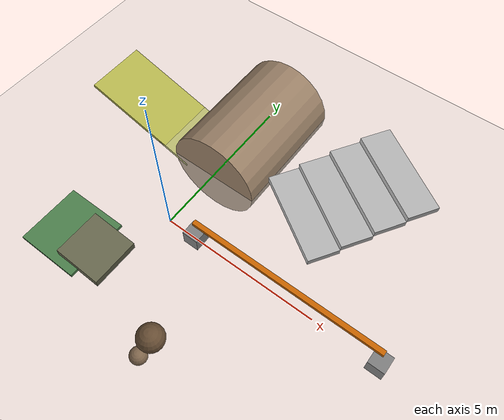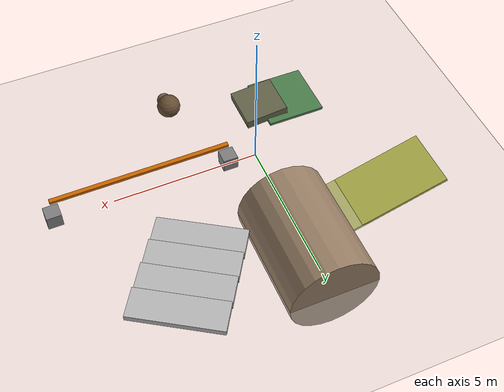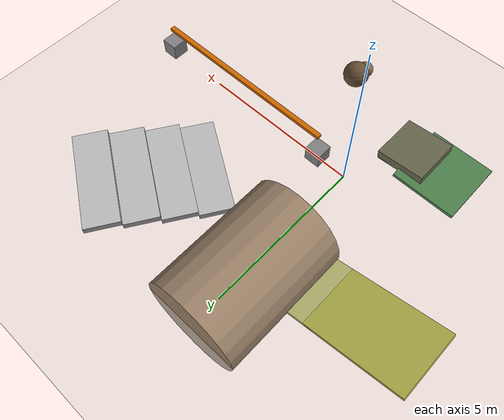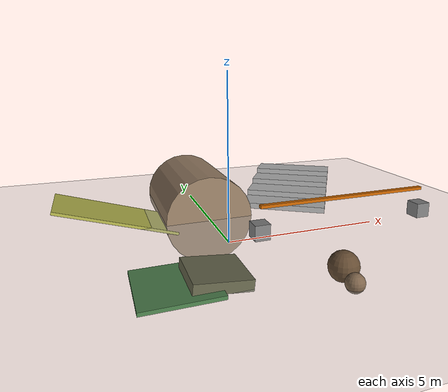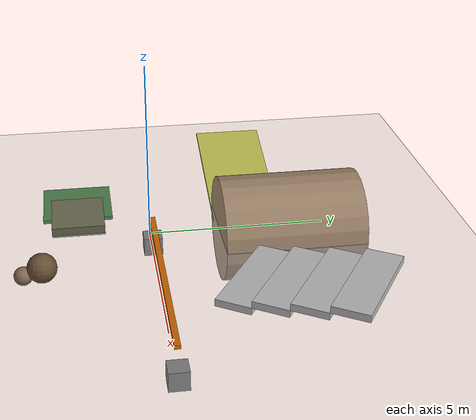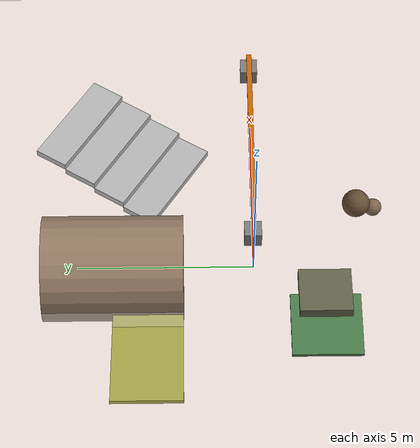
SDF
<?xml version="1.0"?>
<sdf version="1.6">
  <world name="balance_world">
    <include>
      <uri>model://ground_plane</uri>
    </include>
    <include>
      <uri>model://sun</uri>
    </include>

    <!-- Support Block 1 -->
    <model name="support1">
      <pose>1 0 0.25 0 0 0</pose>
      <static>true</static>
      <link name="link">
        <collision name="collision">
          <geometry>
            <box><size>0.5 0.5 0.5</size></box>
          </geometry>
        </collision>
        <visual name="visual">
          <geometry>
            <box><size>0.5 0.5 0.5</size></box>
          </geometry>
          <material>
            <ambient>0.5 0.5 0.5 1</ambient>
          </material>
        </visual>
      </link>
    </model>

    <!-- Support Block 2 -->
    <model name="support2">
      <pose>7 0 0.25 0 0 0</pose>
      <static>true</static>
      <link name="link">
        <collision name="collision">
          <geometry>
            <box><size>0.5 0.5 0.5</size></box>
          </geometry>
        </collision>
        <visual name="visual">
          <geometry>
            <box><size>0.5 0.5 0.5</size></box>
          </geometry>
          <material>
            <ambient>0.5 0.5 0.5 1</ambient>
          </material>
        </visual>
      </link>
    </model>

    <!-- Balance Beam -->
    <model name="beam">
      <pose>4 0 1 0 0 0</pose>
      <static>false</static>
      <link name="link">
        <collision name="collision">
          <geometry>
            <box><size>6 0.15 0.1</size></box>
          </geometry>
        </collision>
        <visual name="visual">
          <geometry>
            <box><size>6 0.15 0.1</size></box>
          </geometry>
          <material>
            <ambient>0.8 0.4 0 1</ambient>
          </material>
        </visual>
        <inertial>
          <mass>5</mass>
          <inertia>
            <ixx>0.0042</ixx>
            <iyy>26.67</iyy>
            <izz>26.67</izz>
            <ixy>0</ixy>
            <ixz>0</ixz>
            <iyz>0</iyz>
          </inertia>
        </inertial>
      </link>
    </model>

    <!-- Stairs -->
    <model name="stairs">
      <pose>3 2.5 0 0 0 1</pose>
      <static>true</static>
      <link name="step1">
        <pose>0 0 0.1 0 0 0</pose>
        <collision name="collision">
          <geometry>
            <box><size>1 3 0.2</size></box>
          </geometry>
        </collision>
        <visual name="visual">
          <geometry>
            <box><size>1 3 0.2</size></box>
          </geometry>
        </visual>
      </link>
      <link name="step2">
        <pose>1 0 0.3 0 0 0</pose>
        <collision name="collision">
          <geometry>
            <box><size>1 3 0.2</size></box>
          </geometry>
        </collision>
        <visual name="visual">
          <geometry>
            <box><size>1 3 0.2</size></box>
          </geometry>
        </visual>
      </link>
      <link name="step3">
        <pose>2 0 0.5 0 0 0</pose>
        <collision name="collision">
          <geometry>
            <box><size>1 3 0.2</size></box>
          </geometry>
        </collision>
        <visual name="visual">
          <geometry>
            <box><size>1 3 0.2</size></box>
          </geometry>
        </visual>
      </link>
      <link name="step4">
        <pose>3 0 0.7 0 0 0</pose>
        <collision name="collision">
          <geometry>
            <box><size>1 3 0.2</size></box>
          </geometry>
        </collision>
        <visual name="visual">
          <geometry>
            <box><size>1 3 0.2</size></box>
          </geometry>
        </visual>
      </link>
    </model>

    <!-- Ramp/Slope -->
    <model name="ramp">
      <pose>-3 3 0.25 0 0.3 0</pose>
      <static>true</static>
      <link name="link">
        <collision name="collision">
          <geometry>
            <box><size>4 2 0.1</size></box>
          </geometry>
        </collision>
        <visual name="visual">
          <geometry>
            <box><size>4 2 0.1</size></box>
          </geometry>
          <material>
            <ambient>0.7 0.7 0.3 1</ambient>
          </material>
        </visual>
      </link>
    </model>

    <!-- Rock-like obstacles using spheres -->
    <model name="rock1">
      <pose>2 -3 0.3 0 0 0</pose>
      <static>true</static>
      <link name="link">
        <collision name="collision">
          <geometry>
            <sphere><radius>0.4</radius></sphere>
          </geometry>
        </collision>
        <visual name="visual">
          <geometry>
            <sphere><radius>0.4</radius></sphere>
          </geometry>
          <material>
            <ambient>0.4 0.3 0.2 1</ambient>
          </material>
        </visual>
      </link>
    </model>

    <model name="rock2">
      <pose>2 -3.5 0.1 0 0 0</pose>
      <static>true</static>
      <link name="link">
        <collision name="collision">
          <geometry>
            <sphere><radius>0.25</radius></sphere>
          </geometry>
        </collision>
        <visual name="visual">
          <geometry>
            <sphere><radius>0.25</radius></sphere>
          </geometry>
          <material>
            <ambient>0.5 0.4 0.3 1</ambient>
          </material>
        </visual>
      </link>
    </model>

    <!-- Uneven terrain using multiple boxes at different heights -->
    <model name="terrain_patch1">
      <pose>-2 -2 0.05 0 0 0</pose>
      <static>true</static>
      <link name="link">
        <collision name="collision">
          <geometry>
            <box><size>2 2 0.1</size></box>
          </geometry>
        </collision>
        <visual name="visual">
          <geometry>
            <box><size>2 2 0.1</size></box>
          </geometry>
          <material>
            <ambient>0.3 0.5 0.3 1</ambient>
          </material>
        </visual>
      </link>
    </model>

    <model name="terrain_patch2">
      <pose>-1 -2 0.15 0 0.1 0</pose>
      <static>true</static>
      <link name="link">
        <collision name="collision">
          <geometry>
            <box><size>1.5 1.5 0.3</size></box>
          </geometry>
        </collision>
        <visual name="visual">
          <geometry>
            <box><size>1.5 1.5 0.3</size></box>
          </geometry>
          <material>
            <ambient>0.4 0.4 0.3 1</ambient>
          </material>
        </visual>
      </link>
    </model>

    <!-- Curved surface using mesh (cylinder on its side) -->
    <model name="curved_hill">
      <pose>0 4 0 1.5708 0 0</pose>
      <static>true</static>
      <link name="link">
        <collision name="collision">
          <geometry>
            <cylinder><radius>1.5</radius><length>4</length></cylinder>
          </geometry>
        </collision>
        <visual name="visual">
          <geometry>
            <cylinder><radius>1.5</radius><length>4</length></cylinder>
          </geometry>
          <material>
            <ambient>0.6 0.5 0.4 1</ambient>
          </material>
        </visual>
      </link>
    </model>
  </world>
</sdf>
